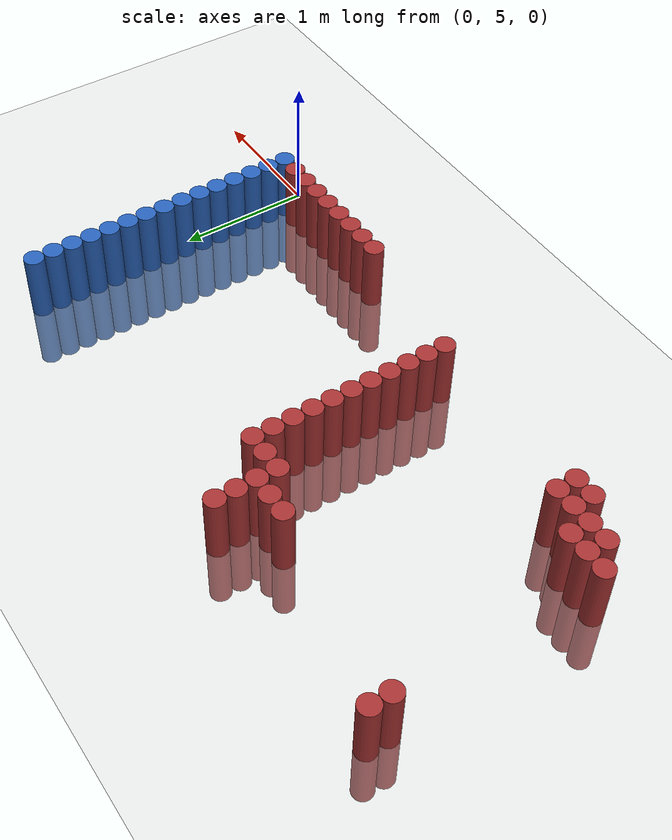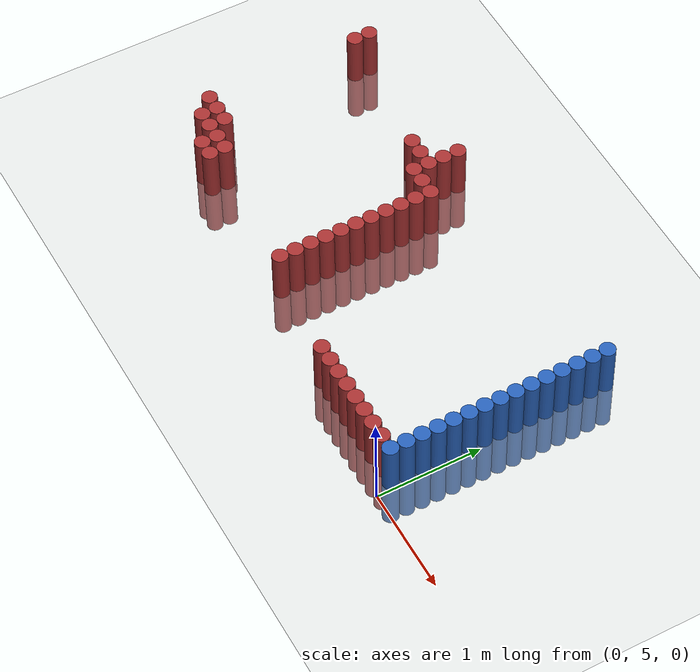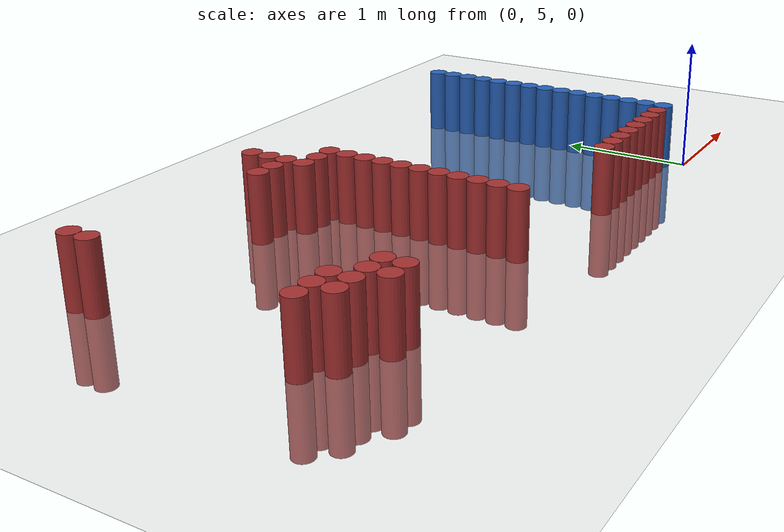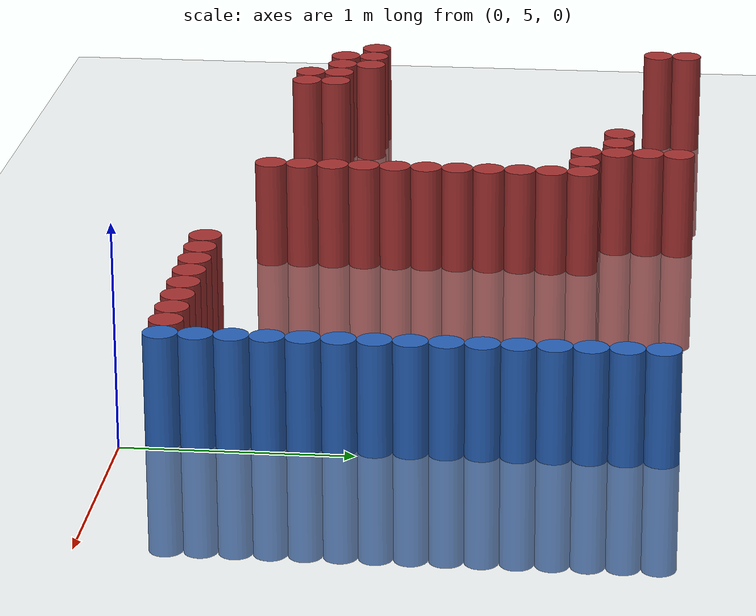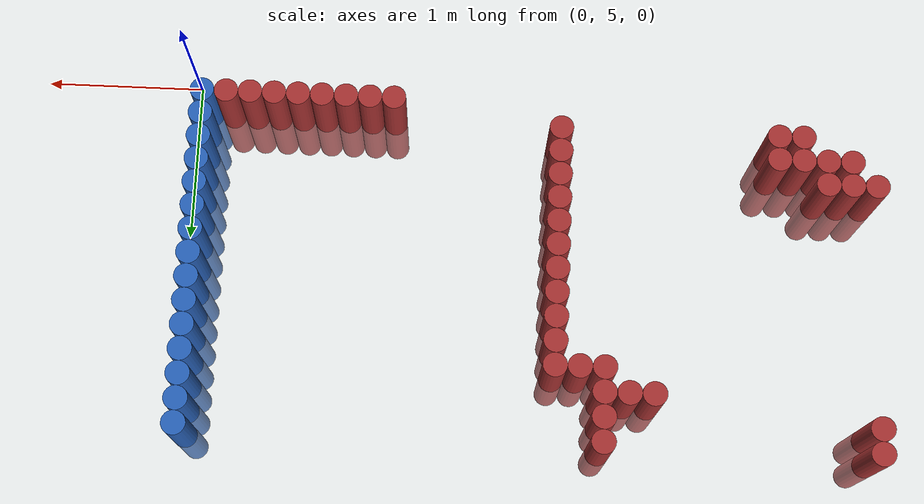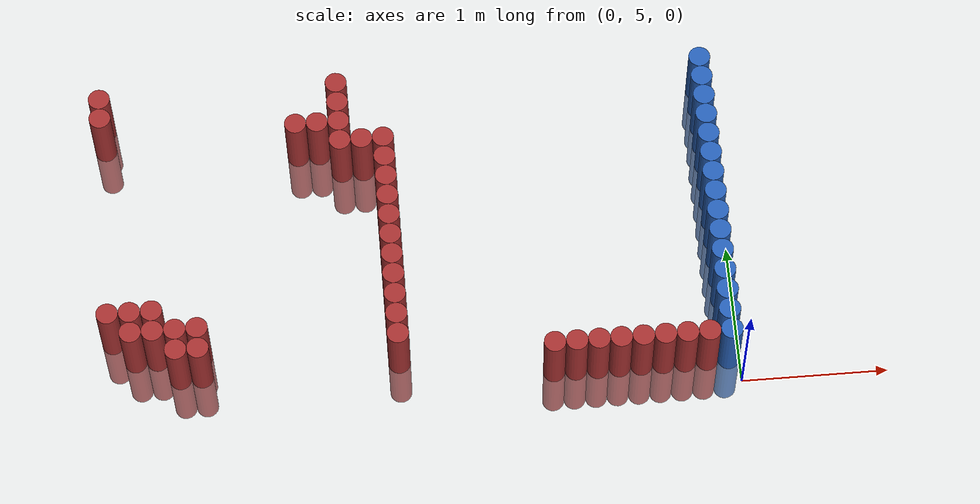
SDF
<sdf version="1.6">
 <world name="default">
  <model name="ground_plane">
   <static>1</static>
   <link name="link">
    <collision name="collision">
     <geometry><plane><normal>0 0 1</normal><size>100 100</size></plane></geometry>
     <surface><friction><ode><mu>100</mu><mu2>50</mu2></ode></friction></surface>
    </collision>
    <visual name="visual">
     <cast_shadows>0</cast_shadows>
     <geometry><plane><normal>0 0 1</normal><size>100 100</size></plane></geometry>
     <material>
      <script><uri>file://media/materials/scripts/gazebo.material</uri><name>Gazebo/Grey</name></script>
     </material>
    </visual>
   </link>
  </model>
  <model name="unit_cylinder_251">
   <static>1</static>
   <pose>-4.275000 5.625000 0.000000 0.000000 0.000000 0.000000</pose>
   <link name="link">
    <inertial>
     <mass>1</mass>
     <inertia><ixx>0.145833</ixx><ixy>0</ixy><ixz>0</ixz><iyy>0.145833</iyy><iyz>0</iyz><izz>0.125</izz></inertia>
    </inertial>
    <collision name="collision">
     <geometry><cylinder><radius>0.075000</radius><length>1</length></cylinder></geometry>
    </collision>
    <visual name="visual">
     <geometry><cylinder><radius>0.075000</radius><length>1</length></cylinder></geometry>
     <material>
      <ambient>0.648000 0.192000 0.192000 1</ambient>
      <diffuse>0.648000 0.192000 0.192000 1</diffuse>
     </material>
     <material>
      <script><name>Gazebo/Grey</name><uri>file://media/materials/scripts/gazebo.material</uri></script>
     </material>
    </visual>
   </link>
  </model>
  <model name="unit_cylinder_252">
   <static>1</static>
   <pose>-4.275000 7.125000 0.000000 0.000000 0.000000 0.000000</pose>
   <link name="link">
    <inertial>
     <mass>1</mass>
     <inertia><ixx>0.145833</ixx><ixy>0</ixy><ixz>0</ixz><iyy>0.145833</iyy><iyz>0</iyz><izz>0.125</izz></inertia>
    </inertial>
    <collision name="collision">
     <geometry><cylinder><radius>0.075000</radius><length>1</length></cylinder></geometry>
    </collision>
    <visual name="visual">
     <geometry><cylinder><radius>0.075000</radius><length>1</length></cylinder></geometry>
     <material>
      <ambient>0.648000 0.192000 0.192000 1</ambient>
      <diffuse>0.648000 0.192000 0.192000 1</diffuse>
     </material>
     <material>
      <script><name>Gazebo/Grey</name><uri>file://media/materials/scripts/gazebo.material</uri></script>
     </material>
    </visual>
   </link>
  </model>
  <model name="unit_cylinder_253">
   <static>1</static>
   <pose>-4.275000 7.275000 0.000000 0.000000 0.000000 0.000000</pose>
   <link name="link">
    <inertial>
     <mass>1</mass>
     <inertia><ixx>0.145833</ixx><ixy>0</ixy><ixz>0</ixz><iyy>0.145833</iyy><iyz>0</iyz><izz>0.125</izz></inertia>
    </inertial>
    <collision name="collision">
     <geometry><cylinder><radius>0.075000</radius><length>1</length></cylinder></geometry>
    </collision>
    <visual name="visual">
     <geometry><cylinder><radius>0.075000</radius><length>1</length></cylinder></geometry>
     <material>
      <ambient>0.648000 0.192000 0.192000 1</ambient>
      <diffuse>0.648000 0.192000 0.192000 1</diffuse>
     </material>
     <material>
      <script><name>Gazebo/Grey</name><uri>file://media/materials/scripts/gazebo.material</uri></script>
     </material>
    </visual>
   </link>
  </model>
  <model name="unit_cylinder_255">
   <static>1</static>
   <pose>-4.125000 5.475000 0.000000 0.000000 0.000000 0.000000</pose>
   <link name="link">
    <inertial>
     <mass>1</mass>
     <inertia><ixx>0.145833</ixx><ixy>0</ixy><ixz>0</ixz><iyy>0.145833</iyy><iyz>0</iyz><izz>0.125</izz></inertia>
    </inertial>
    <collision name="collision">
     <geometry><cylinder><radius>0.075000</radius><length>1</length></cylinder></geometry>
    </collision>
    <visual name="visual">
     <geometry><cylinder><radius>0.075000</radius><length>1</length></cylinder></geometry>
     <material>
      <ambient>0.648000 0.192000 0.192000 1</ambient>
      <diffuse>0.648000 0.192000 0.192000 1</diffuse>
     </material>
     <material>
      <script><name>Gazebo/Grey</name><uri>file://media/materials/scripts/gazebo.material</uri></script>
     </material>
    </visual>
   </link>
  </model>
  <model name="unit_cylinder_256">
   <static>1</static>
   <pose>-4.125000 5.625000 0.000000 0.000000 0.000000 0.000000</pose>
   <link name="link">
    <inertial>
     <mass>1</mass>
     <inertia><ixx>0.145833</ixx><ixy>0</ixy><ixz>0</ixz><iyy>0.145833</iyy><iyz>0</iyz><izz>0.125</izz></inertia>
    </inertial>
    <collision name="collision">
     <geometry><cylinder><radius>0.075000</radius><length>1</length></cylinder></geometry>
    </collision>
    <visual name="visual">
     <geometry><cylinder><radius>0.075000</radius><length>1</length></cylinder></geometry>
     <material>
      <ambient>0.648000 0.192000 0.192000 1</ambient>
      <diffuse>0.648000 0.192000 0.192000 1</diffuse>
     </material>
     <material>
      <script><name>Gazebo/Grey</name><uri>file://media/materials/scripts/gazebo.material</uri></script>
     </material>
    </visual>
   </link>
  </model>
  <model name="unit_cylinder_260">
   <static>1</static>
   <pose>-3.975000 5.475000 0.000000 0.000000 0.000000 0.000000</pose>
   <link name="link">
    <inertial>
     <mass>1</mass>
     <inertia><ixx>0.145833</ixx><ixy>0</ixy><ixz>0</ixz><iyy>0.145833</iyy><iyz>0</iyz><izz>0.125</izz></inertia>
    </inertial>
    <collision name="collision">
     <geometry><cylinder><radius>0.075000</radius><length>1</length></cylinder></geometry>
    </collision>
    <visual name="visual">
     <geometry><cylinder><radius>0.075000</radius><length>1</length></cylinder></geometry>
     <material>
      <ambient>0.648000 0.192000 0.192000 1</ambient>
      <diffuse>0.648000 0.192000 0.192000 1</diffuse>
     </material>
     <material>
      <script><name>Gazebo/Grey</name><uri>file://media/materials/scripts/gazebo.material</uri></script>
     </material>
    </visual>
   </link>
  </model>
  <model name="unit_cylinder_261">
   <static>1</static>
   <pose>-3.975000 5.625000 0.000000 0.000000 0.000000 0.000000</pose>
   <link name="link">
    <inertial>
     <mass>1</mass>
     <inertia><ixx>0.145833</ixx><ixy>0</ixy><ixz>0</ixz><iyy>0.145833</iyy><iyz>0</iyz><izz>0.125</izz></inertia>
    </inertial>
    <collision name="collision">
     <geometry><cylinder><radius>0.075000</radius><length>1</length></cylinder></geometry>
    </collision>
    <visual name="visual">
     <geometry><cylinder><radius>0.075000</radius><length>1</length></cylinder></geometry>
     <material>
      <ambient>0.648000 0.192000 0.192000 1</ambient>
      <diffuse>0.648000 0.192000 0.192000 1</diffuse>
     </material>
     <material>
      <script><name>Gazebo/Grey</name><uri>file://media/materials/scripts/gazebo.material</uri></script>
     </material>
    </visual>
   </link>
  </model>
  <model name="unit_cylinder_264">
   <static>1</static>
   <pose>-3.825000 5.325000 0.000000 0.000000 0.000000 0.000000</pose>
   <link name="link">
    <inertial>
     <mass>1</mass>
     <inertia><ixx>0.145833</ixx><ixy>0</ixy><ixz>0</ixz><iyy>0.145833</iyy><iyz>0</iyz><izz>0.125</izz></inertia>
    </inertial>
    <collision name="collision">
     <geometry><cylinder><radius>0.075000</radius><length>1</length></cylinder></geometry>
    </collision>
    <visual name="visual">
     <geometry><cylinder><radius>0.075000</radius><length>1</length></cylinder></geometry>
     <material>
      <ambient>0.648000 0.192000 0.192000 1</ambient>
      <diffuse>0.648000 0.192000 0.192000 1</diffuse>
     </material>
     <material>
      <script><name>Gazebo/Grey</name><uri>file://media/materials/scripts/gazebo.material</uri></script>
     </material>
    </visual>
   </link>
  </model>
  <model name="unit_cylinder_265">
   <static>1</static>
   <pose>-3.825000 5.475000 0.000000 0.000000 0.000000 0.000000</pose>
   <link name="link">
    <inertial>
     <mass>1</mass>
     <inertia><ixx>0.145833</ixx><ixy>0</ixy><ixz>0</ixz><iyy>0.145833</iyy><iyz>0</iyz><izz>0.125</izz></inertia>
    </inertial>
    <collision name="collision">
     <geometry><cylinder><radius>0.075000</radius><length>1</length></cylinder></geometry>
    </collision>
    <visual name="visual">
     <geometry><cylinder><radius>0.075000</radius><length>1</length></cylinder></geometry>
     <material>
      <ambient>0.648000 0.192000 0.192000 1</ambient>
      <diffuse>0.648000 0.192000 0.192000 1</diffuse>
     </material>
     <material>
      <script><name>Gazebo/Grey</name><uri>file://media/materials/scripts/gazebo.material</uri></script>
     </material>
    </visual>
   </link>
  </model>
  <model name="unit_cylinder_266">
   <static>1</static>
   <pose>-3.675000 5.325000 0.000000 0.000000 0.000000 0.000000</pose>
   <link name="link">
    <inertial>
     <mass>1</mass>
     <inertia><ixx>0.145833</ixx><ixy>0</ixy><ixz>0</ixz><iyy>0.145833</iyy><iyz>0</iyz><izz>0.125</izz></inertia>
    </inertial>
    <collision name="collision">
     <geometry><cylinder><radius>0.075000</radius><length>1</length></cylinder></geometry>
    </collision>
    <visual name="visual">
     <geometry><cylinder><radius>0.075000</radius><length>1</length></cylinder></geometry>
     <material>
      <ambient>0.648000 0.192000 0.192000 1</ambient>
      <diffuse>0.648000 0.192000 0.192000 1</diffuse>
     </material>
     <material>
      <script><name>Gazebo/Grey</name><uri>file://media/materials/scripts/gazebo.material</uri></script>
     </material>
    </visual>
   </link>
  </model>
  <model name="unit_cylinder_267">
   <static>1</static>
   <pose>-3.675000 5.475000 0.000000 0.000000 0.000000 0.000000</pose>
   <link name="link">
    <inertial>
     <mass>1</mass>
     <inertia><ixx>0.145833</ixx><ixy>0</ixy><ixz>0</ixz><iyy>0.145833</iyy><iyz>0</iyz><izz>0.125</izz></inertia>
    </inertial>
    <collision name="collision">
     <geometry><cylinder><radius>0.075000</radius><length>1</length></cylinder></geometry>
    </collision>
    <visual name="visual">
     <geometry><cylinder><radius>0.075000</radius><length>1</length></cylinder></geometry>
     <material>
      <ambient>0.648000 0.192000 0.192000 1</ambient>
      <diffuse>0.648000 0.192000 0.192000 1</diffuse>
     </material>
     <material>
      <script><name>Gazebo/Grey</name><uri>file://media/materials/scripts/gazebo.material</uri></script>
     </material>
    </visual>
   </link>
  </model>
  <model name="unit_cylinder_268">
   <static>1</static>
   <pose>-2.925000 6.975000 0.000000 0.000000 0.000000 0.000000</pose>
   <link name="link">
    <inertial>
     <mass>1</mass>
     <inertia><ixx>0.145833</ixx><ixy>0</ixy><ixz>0</ixz><iyy>0.145833</iyy><iyz>0</iyz><izz>0.125</izz></inertia>
    </inertial>
    <collision name="collision">
     <geometry><cylinder><radius>0.075000</radius><length>1</length></cylinder></geometry>
    </collision>
    <visual name="visual">
     <geometry><cylinder><radius>0.075000</radius><length>1</length></cylinder></geometry>
     <material>
      <ambient>0.648000 0.192000 0.192000 1</ambient>
      <diffuse>0.648000 0.192000 0.192000 1</diffuse>
     </material>
     <material>
      <script><name>Gazebo/Grey</name><uri>file://media/materials/scripts/gazebo.material</uri></script>
     </material>
    </visual>
   </link>
  </model>
  <model name="unit_cylinder_269">
   <static>1</static>
   <pose>-2.775000 6.975000 0.000000 0.000000 0.000000 0.000000</pose>
   <link name="link">
    <inertial>
     <mass>1</mass>
     <inertia><ixx>0.145833</ixx><ixy>0</ixy><ixz>0</ixz><iyy>0.145833</iyy><iyz>0</iyz><izz>0.125</izz></inertia>
    </inertial>
    <collision name="collision">
     <geometry><cylinder><radius>0.075000</radius><length>1</length></cylinder></geometry>
    </collision>
    <visual name="visual">
     <geometry><cylinder><radius>0.075000</radius><length>1</length></cylinder></geometry>
     <material>
      <ambient>0.648000 0.192000 0.192000 1</ambient>
      <diffuse>0.648000 0.192000 0.192000 1</diffuse>
     </material>
     <material>
      <script><name>Gazebo/Grey</name><uri>file://media/materials/scripts/gazebo.material</uri></script>
     </material>
    </visual>
   </link>
  </model>
  <model name="unit_cylinder_270">
   <static>1</static>
   <pose>-2.625000 6.825000 0.000000 0.000000 0.000000 0.000000</pose>
   <link name="link">
    <inertial>
     <mass>1</mass>
     <inertia><ixx>0.145833</ixx><ixy>0</ixy><ixz>0</ixz><iyy>0.145833</iyy><iyz>0</iyz><izz>0.125</izz></inertia>
    </inertial>
    <collision name="collision">
     <geometry><cylinder><radius>0.075000</radius><length>1</length></cylinder></geometry>
    </collision>
    <visual name="visual">
     <geometry><cylinder><radius>0.075000</radius><length>1</length></cylinder></geometry>
     <material>
      <ambient>0.648000 0.192000 0.192000 1</ambient>
      <diffuse>0.648000 0.192000 0.192000 1</diffuse>
     </material>
     <material>
      <script><name>Gazebo/Grey</name><uri>file://media/materials/scripts/gazebo.material</uri></script>
     </material>
    </visual>
   </link>
  </model>
  <model name="unit_cylinder_271">
   <static>1</static>
   <pose>-2.625000 6.975000 0.000000 0.000000 0.000000 0.000000</pose>
   <link name="link">
    <inertial>
     <mass>1</mass>
     <inertia><ixx>0.145833</ixx><ixy>0</ixy><ixz>0</ixz><iyy>0.145833</iyy><iyz>0</iyz><izz>0.125</izz></inertia>
    </inertial>
    <collision name="collision">
     <geometry><cylinder><radius>0.075000</radius><length>1</length></cylinder></geometry>
    </collision>
    <visual name="visual">
     <geometry><cylinder><radius>0.075000</radius><length>1</length></cylinder></geometry>
     <material>
      <ambient>0.648000 0.192000 0.192000 1</ambient>
      <diffuse>0.648000 0.192000 0.192000 1</diffuse>
     </material>
     <material>
      <script><name>Gazebo/Grey</name><uri>file://media/materials/scripts/gazebo.material</uri></script>
     </material>
    </visual>
   </link>
  </model>
  <model name="unit_cylinder_272">
   <static>1</static>
   <pose>-2.625000 7.125000 0.000000 0.000000 0.000000 0.000000</pose>
   <link name="link">
    <inertial>
     <mass>1</mass>
     <inertia><ixx>0.145833</ixx><ixy>0</ixy><ixz>0</ixz><iyy>0.145833</iyy><iyz>0</iyz><izz>0.125</izz></inertia>
    </inertial>
    <collision name="collision">
     <geometry><cylinder><radius>0.075000</radius><length>1</length></cylinder></geometry>
    </collision>
    <visual name="visual">
     <geometry><cylinder><radius>0.075000</radius><length>1</length></cylinder></geometry>
     <material>
      <ambient>0.648000 0.192000 0.192000 1</ambient>
      <diffuse>0.648000 0.192000 0.192000 1</diffuse>
     </material>
     <material>
      <script><name>Gazebo/Grey</name><uri>file://media/materials/scripts/gazebo.material</uri></script>
     </material>
    </visual>
   </link>
  </model>
  <model name="unit_cylinder_273">
   <static>1</static>
   <pose>-2.625000 7.275000 0.000000 0.000000 0.000000 0.000000</pose>
   <link name="link">
    <inertial>
     <mass>1</mass>
     <inertia><ixx>0.145833</ixx><ixy>0</ixy><ixz>0</ixz><iyy>0.145833</iyy><iyz>0</iyz><izz>0.125</izz></inertia>
    </inertial>
    <collision name="collision">
     <geometry><cylinder><radius>0.075000</radius><length>1</length></cylinder></geometry>
    </collision>
    <visual name="visual">
     <geometry><cylinder><radius>0.075000</radius><length>1</length></cylinder></geometry>
     <material>
      <ambient>0.648000 0.192000 0.192000 1</ambient>
      <diffuse>0.648000 0.192000 0.192000 1</diffuse>
     </material>
     <material>
      <script><name>Gazebo/Grey</name><uri>file://media/materials/scripts/gazebo.material</uri></script>
     </material>
    </visual>
   </link>
  </model>
  <model name="unit_cylinder_289">
   <static>1</static>
   <pose>-2.475000 6.825000 0.000000 0.000000 0.000000 0.000000</pose>
   <link name="link">
    <inertial>
     <mass>1</mass>
     <inertia><ixx>0.145833</ixx><ixy>0</ixy><ixz>0</ixz><iyy>0.145833</iyy><iyz>0</iyz><izz>0.125</izz></inertia>
    </inertial>
    <collision name="collision">
     <geometry><cylinder><radius>0.075000</radius><length>1</length></cylinder></geometry>
    </collision>
    <visual name="visual">
     <geometry><cylinder><radius>0.075000</radius><length>1</length></cylinder></geometry>
     <material>
      <ambient>0.648000 0.192000 0.192000 1</ambient>
      <diffuse>0.648000 0.192000 0.192000 1</diffuse>
     </material>
     <material>
      <script><name>Gazebo/Grey</name><uri>file://media/materials/scripts/gazebo.material</uri></script>
     </material>
    </visual>
   </link>
  </model>
  <model name="unit_cylinder_292">
   <static>1</static>
   <pose>-2.325000 5.325000 0.000000 0.000000 0.000000 0.000000</pose>
   <link name="link">
    <inertial>
     <mass>1</mass>
     <inertia><ixx>0.145833</ixx><ixy>0</ixy><ixz>0</ixz><iyy>0.145833</iyy><iyz>0</iyz><izz>0.125</izz></inertia>
    </inertial>
    <collision name="collision">
     <geometry><cylinder><radius>0.075000</radius><length>1</length></cylinder></geometry>
    </collision>
    <visual name="visual">
     <geometry><cylinder><radius>0.075000</radius><length>1</length></cylinder></geometry>
     <material>
      <ambient>0.648000 0.192000 0.192000 1</ambient>
      <diffuse>0.648000 0.192000 0.192000 1</diffuse>
     </material>
     <material>
      <script><name>Gazebo/Grey</name><uri>file://media/materials/scripts/gazebo.material</uri></script>
     </material>
    </visual>
   </link>
  </model>
  <model name="unit_cylinder_293">
   <static>1</static>
   <pose>-2.325000 5.475000 0.000000 0.000000 0.000000 0.000000</pose>
   <link name="link">
    <inertial>
     <mass>1</mass>
     <inertia><ixx>0.145833</ixx><ixy>0</ixy><ixz>0</ixz><iyy>0.145833</iyy><iyz>0</iyz><izz>0.125</izz></inertia>
    </inertial>
    <collision name="collision">
     <geometry><cylinder><radius>0.075000</radius><length>1</length></cylinder></geometry>
    </collision>
    <visual name="visual">
     <geometry><cylinder><radius>0.075000</radius><length>1</length></cylinder></geometry>
     <material>
      <ambient>0.648000 0.192000 0.192000 1</ambient>
      <diffuse>0.648000 0.192000 0.192000 1</diffuse>
     </material>
     <material>
      <script><name>Gazebo/Grey</name><uri>file://media/materials/scripts/gazebo.material</uri></script>
     </material>
    </visual>
   </link>
  </model>
  <model name="unit_cylinder_294">
   <static>1</static>
   <pose>-2.325000 5.625000 0.000000 0.000000 0.000000 0.000000</pose>
   <link name="link">
    <inertial>
     <mass>1</mass>
     <inertia><ixx>0.145833</ixx><ixy>0</ixy><ixz>0</ixz><iyy>0.145833</iyy><iyz>0</iyz><izz>0.125</izz></inertia>
    </inertial>
    <collision name="collision">
     <geometry><cylinder><radius>0.075000</radius><length>1</length></cylinder></geometry>
    </collision>
    <visual name="visual">
     <geometry><cylinder><radius>0.075000</radius><length>1</length></cylinder></geometry>
     <material>
      <ambient>0.648000 0.192000 0.192000 1</ambient>
      <diffuse>0.648000 0.192000 0.192000 1</diffuse>
     </material>
     <material>
      <script><name>Gazebo/Grey</name><uri>file://media/materials/scripts/gazebo.material</uri></script>
     </material>
    </visual>
   </link>
  </model>
  <model name="unit_cylinder_295">
   <static>1</static>
   <pose>-2.325000 5.775000 0.000000 0.000000 0.000000 0.000000</pose>
   <link name="link">
    <inertial>
     <mass>1</mass>
     <inertia><ixx>0.145833</ixx><ixy>0</ixy><ixz>0</ixz><iyy>0.145833</iyy><iyz>0</iyz><izz>0.125</izz></inertia>
    </inertial>
    <collision name="collision">
     <geometry><cylinder><radius>0.075000</radius><length>1</length></cylinder></geometry>
    </collision>
    <visual name="visual">
     <geometry><cylinder><radius>0.075000</radius><length>1</length></cylinder></geometry>
     <material>
      <ambient>0.648000 0.192000 0.192000 1</ambient>
      <diffuse>0.648000 0.192000 0.192000 1</diffuse>
     </material>
     <material>
      <script><name>Gazebo/Grey</name><uri>file://media/materials/scripts/gazebo.material</uri></script>
     </material>
    </visual>
   </link>
  </model>
  <model name="unit_cylinder_296">
   <static>1</static>
   <pose>-2.325000 5.925000 0.000000 0.000000 0.000000 0.000000</pose>
   <link name="link">
    <inertial>
     <mass>1</mass>
     <inertia><ixx>0.145833</ixx><ixy>0</ixy><ixz>0</ixz><iyy>0.145833</iyy><iyz>0</iyz><izz>0.125</izz></inertia>
    </inertial>
    <collision name="collision">
     <geometry><cylinder><radius>0.075000</radius><length>1</length></cylinder></geometry>
    </collision>
    <visual name="visual">
     <geometry><cylinder><radius>0.075000</radius><length>1</length></cylinder></geometry>
     <material>
      <ambient>0.648000 0.192000 0.192000 1</ambient>
      <diffuse>0.648000 0.192000 0.192000 1</diffuse>
     </material>
     <material>
      <script><name>Gazebo/Grey</name><uri>file://media/materials/scripts/gazebo.material</uri></script>
     </material>
    </visual>
   </link>
  </model>
  <model name="unit_cylinder_297">
   <static>1</static>
   <pose>-2.325000 6.075000 0.000000 0.000000 0.000000 0.000000</pose>
   <link name="link">
    <inertial>
     <mass>1</mass>
     <inertia><ixx>0.145833</ixx><ixy>0</ixy><ixz>0</ixz><iyy>0.145833</iyy><iyz>0</iyz><izz>0.125</izz></inertia>
    </inertial>
    <collision name="collision">
     <geometry><cylinder><radius>0.075000</radius><length>1</length></cylinder></geometry>
    </collision>
    <visual name="visual">
     <geometry><cylinder><radius>0.075000</radius><length>1</length></cylinder></geometry>
     <material>
      <ambient>0.648000 0.192000 0.192000 1</ambient>
      <diffuse>0.648000 0.192000 0.192000 1</diffuse>
     </material>
     <material>
      <script><name>Gazebo/Grey</name><uri>file://media/materials/scripts/gazebo.material</uri></script>
     </material>
    </visual>
   </link>
  </model>
  <model name="unit_cylinder_298">
   <static>1</static>
   <pose>-2.325000 6.225000 0.000000 0.000000 0.000000 0.000000</pose>
   <link name="link">
    <inertial>
     <mass>1</mass>
     <inertia><ixx>0.145833</ixx><ixy>0</ixy><ixz>0</ixz><iyy>0.145833</iyy><iyz>0</iyz><izz>0.125</izz></inertia>
    </inertial>
    <collision name="collision">
     <geometry><cylinder><radius>0.075000</radius><length>1</length></cylinder></geometry>
    </collision>
    <visual name="visual">
     <geometry><cylinder><radius>0.075000</radius><length>1</length></cylinder></geometry>
     <material>
      <ambient>0.648000 0.192000 0.192000 1</ambient>
      <diffuse>0.648000 0.192000 0.192000 1</diffuse>
     </material>
     <material>
      <script><name>Gazebo/Grey</name><uri>file://media/materials/scripts/gazebo.material</uri></script>
     </material>
    </visual>
   </link>
  </model>
  <model name="unit_cylinder_299">
   <static>1</static>
   <pose>-2.325000 6.375000 0.000000 0.000000 0.000000 0.000000</pose>
   <link name="link">
    <inertial>
     <mass>1</mass>
     <inertia><ixx>0.145833</ixx><ixy>0</ixy><ixz>0</ixz><iyy>0.145833</iyy><iyz>0</iyz><izz>0.125</izz></inertia>
    </inertial>
    <collision name="collision">
     <geometry><cylinder><radius>0.075000</radius><length>1</length></cylinder></geometry>
    </collision>
    <visual name="visual">
     <geometry><cylinder><radius>0.075000</radius><length>1</length></cylinder></geometry>
     <material>
      <ambient>0.648000 0.192000 0.192000 1</ambient>
      <diffuse>0.648000 0.192000 0.192000 1</diffuse>
     </material>
     <material>
      <script><name>Gazebo/Grey</name><uri>file://media/materials/scripts/gazebo.material</uri></script>
     </material>
    </visual>
   </link>
  </model>
  <model name="unit_cylinder_300">
   <static>1</static>
   <pose>-2.325000 6.525000 0.000000 0.000000 0.000000 0.000000</pose>
   <link name="link">
    <inertial>
     <mass>1</mass>
     <inertia><ixx>0.145833</ixx><ixy>0</ixy><ixz>0</ixz><iyy>0.145833</iyy><iyz>0</iyz><izz>0.125</izz></inertia>
    </inertial>
    <collision name="collision">
     <geometry><cylinder><radius>0.075000</radius><length>1</length></cylinder></geometry>
    </collision>
    <visual name="visual">
     <geometry><cylinder><radius>0.075000</radius><length>1</length></cylinder></geometry>
     <material>
      <ambient>0.648000 0.192000 0.192000 1</ambient>
      <diffuse>0.648000 0.192000 0.192000 1</diffuse>
     </material>
     <material>
      <script><name>Gazebo/Grey</name><uri>file://media/materials/scripts/gazebo.material</uri></script>
     </material>
    </visual>
   </link>
  </model>
  <model name="unit_cylinder_301">
   <static>1</static>
   <pose>-2.325000 6.675000 0.000000 0.000000 0.000000 0.000000</pose>
   <link name="link">
    <inertial>
     <mass>1</mass>
     <inertia><ixx>0.145833</ixx><ixy>0</ixy><ixz>0</ixz><iyy>0.145833</iyy><iyz>0</iyz><izz>0.125</izz></inertia>
    </inertial>
    <collision name="collision">
     <geometry><cylinder><radius>0.075000</radius><length>1</length></cylinder></geometry>
    </collision>
    <visual name="visual">
     <geometry><cylinder><radius>0.075000</radius><length>1</length></cylinder></geometry>
     <material>
      <ambient>0.648000 0.192000 0.192000 1</ambient>
      <diffuse>0.648000 0.192000 0.192000 1</diffuse>
     </material>
     <material>
      <script><name>Gazebo/Grey</name><uri>file://media/materials/scripts/gazebo.material</uri></script>
     </material>
    </visual>
   </link>
  </model>
  <model name="unit_cylinder_302">
   <static>1</static>
   <pose>-2.325000 6.825000 0.000000 0.000000 0.000000 0.000000</pose>
   <link name="link">
    <inertial>
     <mass>1</mass>
     <inertia><ixx>0.145833</ixx><ixy>0</ixy><ixz>0</ixz><iyy>0.145833</iyy><iyz>0</iyz><izz>0.125</izz></inertia>
    </inertial>
    <collision name="collision">
     <geometry><cylinder><radius>0.075000</radius><length>1</length></cylinder></geometry>
    </collision>
    <visual name="visual">
     <geometry><cylinder><radius>0.075000</radius><length>1</length></cylinder></geometry>
     <material>
      <ambient>0.648000 0.192000 0.192000 1</ambient>
      <diffuse>0.648000 0.192000 0.192000 1</diffuse>
     </material>
     <material>
      <script><name>Gazebo/Grey</name><uri>file://media/materials/scripts/gazebo.material</uri></script>
     </material>
    </visual>
   </link>
  </model>
  <model name="unit_cylinder_316">
   <static>1</static>
   <pose>-1.275000 5.175000 0.000000 0.000000 0.000000 0.000000</pose>
   <link name="link">
    <inertial>
     <mass>1</mass>
     <inertia><ixx>0.145833</ixx><ixy>0</ixy><ixz>0</ixz><iyy>0.145833</iyy><iyz>0</iyz><izz>0.125</izz></inertia>
    </inertial>
    <collision name="collision">
     <geometry><cylinder><radius>0.075000</radius><length>1</length></cylinder></geometry>
    </collision>
    <visual name="visual">
     <geometry><cylinder><radius>0.075000</radius><length>1</length></cylinder></geometry>
     <material>
      <ambient>0.648000 0.192000 0.192000 1</ambient>
      <diffuse>0.648000 0.192000 0.192000 1</diffuse>
     </material>
     <material>
      <script><name>Gazebo/Grey</name><uri>file://media/materials/scripts/gazebo.material</uri></script>
     </material>
    </visual>
   </link>
  </model>
  <model name="unit_cylinder_318">
   <static>1</static>
   <pose>-1.125000 5.175000 0.000000 0.000000 0.000000 0.000000</pose>
   <link name="link">
    <inertial>
     <mass>1</mass>
     <inertia><ixx>0.145833</ixx><ixy>0</ixy><ixz>0</ixz><iyy>0.145833</iyy><iyz>0</iyz><izz>0.125</izz></inertia>
    </inertial>
    <collision name="collision">
     <geometry><cylinder><radius>0.075000</radius><length>1</length></cylinder></geometry>
    </collision>
    <visual name="visual">
     <geometry><cylinder><radius>0.075000</radius><length>1</length></cylinder></geometry>
     <material>
      <ambient>0.648000 0.192000 0.192000 1</ambient>
      <diffuse>0.648000 0.192000 0.192000 1</diffuse>
     </material>
     <material>
      <script><name>Gazebo/Grey</name><uri>file://media/materials/scripts/gazebo.material</uri></script>
     </material>
    </visual>
   </link>
  </model>
  <model name="unit_cylinder_320">
   <static>1</static>
   <pose>-0.975000 5.175000 0.000000 0.000000 0.000000 0.000000</pose>
   <link name="link">
    <inertial>
     <mass>1</mass>
     <inertia><ixx>0.145833</ixx><ixy>0</ixy><ixz>0</ixz><iyy>0.145833</iyy><iyz>0</iyz><izz>0.125</izz></inertia>
    </inertial>
    <collision name="collision">
     <geometry><cylinder><radius>0.075000</radius><length>1</length></cylinder></geometry>
    </collision>
    <visual name="visual">
     <geometry><cylinder><radius>0.075000</radius><length>1</length></cylinder></geometry>
     <material>
      <ambient>0.648000 0.192000 0.192000 1</ambient>
      <diffuse>0.648000 0.192000 0.192000 1</diffuse>
     </material>
     <material>
      <script><name>Gazebo/Grey</name><uri>file://media/materials/scripts/gazebo.material</uri></script>
     </material>
    </visual>
   </link>
  </model>
  <model name="unit_cylinder_322">
   <static>1</static>
   <pose>-0.825000 5.175000 0.000000 0.000000 0.000000 0.000000</pose>
   <link name="link">
    <inertial>
     <mass>1</mass>
     <inertia><ixx>0.145833</ixx><ixy>0</ixy><ixz>0</ixz><iyy>0.145833</iyy><iyz>0</iyz><izz>0.125</izz></inertia>
    </inertial>
    <collision name="collision">
     <geometry><cylinder><radius>0.075000</radius><length>1</length></cylinder></geometry>
    </collision>
    <visual name="visual">
     <geometry><cylinder><radius>0.075000</radius><length>1</length></cylinder></geometry>
     <material>
      <ambient>0.648000 0.192000 0.192000 1</ambient>
      <diffuse>0.648000 0.192000 0.192000 1</diffuse>
     </material>
     <material>
      <script><name>Gazebo/Grey</name><uri>file://media/materials/scripts/gazebo.material</uri></script>
     </material>
    </visual>
   </link>
  </model>
  <model name="unit_cylinder_324">
   <static>1</static>
   <pose>-0.675000 5.175000 0.000000 0.000000 0.000000 0.000000</pose>
   <link name="link">
    <inertial>
     <mass>1</mass>
     <inertia><ixx>0.145833</ixx><ixy>0</ixy><ixz>0</ixz><iyy>0.145833</iyy><iyz>0</iyz><izz>0.125</izz></inertia>
    </inertial>
    <collision name="collision">
     <geometry><cylinder><radius>0.075000</radius><length>1</length></cylinder></geometry>
    </collision>
    <visual name="visual">
     <geometry><cylinder><radius>0.075000</radius><length>1</length></cylinder></geometry>
     <material>
      <ambient>0.648000 0.192000 0.192000 1</ambient>
      <diffuse>0.648000 0.192000 0.192000 1</diffuse>
     </material>
     <material>
      <script><name>Gazebo/Grey</name><uri>file://media/materials/scripts/gazebo.material</uri></script>
     </material>
    </visual>
   </link>
  </model>
  <model name="unit_cylinder_326">
   <static>1</static>
   <pose>-0.525000 5.175000 0.000000 0.000000 0.000000 0.000000</pose>
   <link name="link">
    <inertial>
     <mass>1</mass>
     <inertia><ixx>0.145833</ixx><ixy>0</ixy><ixz>0</ixz><iyy>0.145833</iyy><iyz>0</iyz><izz>0.125</izz></inertia>
    </inertial>
    <collision name="collision">
     <geometry><cylinder><radius>0.075000</radius><length>1</length></cylinder></geometry>
    </collision>
    <visual name="visual">
     <geometry><cylinder><radius>0.075000</radius><length>1</length></cylinder></geometry>
     <material>
      <ambient>0.648000 0.192000 0.192000 1</ambient>
      <diffuse>0.648000 0.192000 0.192000 1</diffuse>
     </material>
     <material>
      <script><name>Gazebo/Grey</name><uri>file://media/materials/scripts/gazebo.material</uri></script>
     </material>
    </visual>
   </link>
  </model>
  <model name="unit_cylinder_328">
   <static>1</static>
   <pose>-0.375000 5.175000 0.000000 0.000000 0.000000 0.000000</pose>
   <link name="link">
    <inertial>
     <mass>1</mass>
     <inertia><ixx>0.145833</ixx><ixy>0</ixy><ixz>0</ixz><iyy>0.145833</iyy><iyz>0</iyz><izz>0.125</izz></inertia>
    </inertial>
    <collision name="collision">
     <geometry><cylinder><radius>0.075000</radius><length>1</length></cylinder></geometry>
    </collision>
    <visual name="visual">
     <geometry><cylinder><radius>0.075000</radius><length>1</length></cylinder></geometry>
     <material>
      <ambient>0.648000 0.192000 0.192000 1</ambient>
      <diffuse>0.648000 0.192000 0.192000 1</diffuse>
     </material>
     <material>
      <script><name>Gazebo/Grey</name><uri>file://media/materials/scripts/gazebo.material</uri></script>
     </material>
    </visual>
   </link>
  </model>
  <model name="unit_cylinder_330">
   <static>1</static>
   <pose>-0.225000 5.175000 0.000000 0.000000 0.000000 0.000000</pose>
   <link name="link">
    <inertial>
     <mass>1</mass>
     <inertia><ixx>0.145833</ixx><ixy>0</ixy><ixz>0</ixz><iyy>0.145833</iyy><iyz>0</iyz><izz>0.125</izz></inertia>
    </inertial>
    <collision name="collision">
     <geometry><cylinder><radius>0.075000</radius><length>1</length></cylinder></geometry>
    </collision>
    <visual name="visual">
     <geometry><cylinder><radius>0.075000</radius><length>1</length></cylinder></geometry>
     <material>
      <ambient>0.648000 0.192000 0.192000 1</ambient>
      <diffuse>0.648000 0.192000 0.192000 1</diffuse>
     </material>
     <material>
      <script><name>Gazebo/Grey</name><uri>file://media/materials/scripts/gazebo.material</uri></script>
     </material>
    </visual>
   </link>
  </model>
  <model name="unit_cylinder_332">
   <static>1</static>
   <pose>-0.075000 5.175000 0.000000 0.000000 0.000000 0.000000</pose>
   <link name="link">
    <inertial>
     <mass>1</mass>
     <inertia><ixx>0.145833</ixx><ixy>0</ixy><ixz>0</ixz><iyy>0.145833</iyy><iyz>0</iyz><izz>0.125</izz></inertia>
    </inertial>
    <collision name="collision">
     <geometry><cylinder><radius>0.075000</radius><length>1</length></cylinder></geometry>
    </collision>
    <visual name="visual">
     <geometry><cylinder><radius>0.075000</radius><length>1</length></cylinder></geometry>
     <material>
      <ambient>0.152000 0.379000 0.720000 1</ambient>
      <diffuse>0.152000 0.379000 0.720000 1</diffuse>
     </material>
     <material>
      <script><name>Gazebo/Grey</name><uri>file://media/materials/scripts/gazebo.material</uri></script>
     </material>
    </visual>
   </link>
  </model>
  <model name="unit_cylinder_333">
   <static>1</static>
   <pose>-0.075000 5.325000 0.000000 0.000000 0.000000 0.000000</pose>
   <link name="link">
    <inertial>
     <mass>1</mass>
     <inertia><ixx>0.145833</ixx><ixy>0</ixy><ixz>0</ixz><iyy>0.145833</iyy><iyz>0</iyz><izz>0.125</izz></inertia>
    </inertial>
    <collision name="collision">
     <geometry><cylinder><radius>0.075000</radius><length>1</length></cylinder></geometry>
    </collision>
    <visual name="visual">
     <geometry><cylinder><radius>0.075000</radius><length>1</length></cylinder></geometry>
     <material>
      <ambient>0.152000 0.379000 0.720000 1</ambient>
      <diffuse>0.152000 0.379000 0.720000 1</diffuse>
     </material>
     <material>
      <script><name>Gazebo/Grey</name><uri>file://media/materials/scripts/gazebo.material</uri></script>
     </material>
    </visual>
   </link>
  </model>
  <model name="unit_cylinder_334">
   <static>1</static>
   <pose>-0.075000 5.475000 0.000000 0.000000 0.000000 0.000000</pose>
   <link name="link">
    <inertial>
     <mass>1</mass>
     <inertia><ixx>0.145833</ixx><ixy>0</ixy><ixz>0</ixz><iyy>0.145833</iyy><iyz>0</iyz><izz>0.125</izz></inertia>
    </inertial>
    <collision name="collision">
     <geometry><cylinder><radius>0.075000</radius><length>1</length></cylinder></geometry>
    </collision>
    <visual name="visual">
     <geometry><cylinder><radius>0.075000</radius><length>1</length></cylinder></geometry>
     <material>
      <ambient>0.152000 0.379000 0.720000 1</ambient>
      <diffuse>0.152000 0.379000 0.720000 1</diffuse>
     </material>
     <material>
      <script><name>Gazebo/Grey</name><uri>file://media/materials/scripts/gazebo.material</uri></script>
     </material>
    </visual>
   </link>
  </model>
  <model name="unit_cylinder_335">
   <static>1</static>
   <pose>-0.075000 5.625000 0.000000 0.000000 0.000000 0.000000</pose>
   <link name="link">
    <inertial>
     <mass>1</mass>
     <inertia><ixx>0.145833</ixx><ixy>0</ixy><ixz>0</ixz><iyy>0.145833</iyy><iyz>0</iyz><izz>0.125</izz></inertia>
    </inertial>
    <collision name="collision">
     <geometry><cylinder><radius>0.075000</radius><length>1</length></cylinder></geometry>
    </collision>
    <visual name="visual">
     <geometry><cylinder><radius>0.075000</radius><length>1</length></cylinder></geometry>
     <material>
      <ambient>0.152000 0.379000 0.720000 1</ambient>
      <diffuse>0.152000 0.379000 0.720000 1</diffuse>
     </material>
     <material>
      <script><name>Gazebo/Grey</name><uri>file://media/materials/scripts/gazebo.material</uri></script>
     </material>
    </visual>
   </link>
  </model>
  <model name="unit_cylinder_336">
   <static>1</static>
   <pose>-0.075000 5.775000 0.000000 0.000000 0.000000 0.000000</pose>
   <link name="link">
    <inertial>
     <mass>1</mass>
     <inertia><ixx>0.145833</ixx><ixy>0</ixy><ixz>0</ixz><iyy>0.145833</iyy><iyz>0</iyz><izz>0.125</izz></inertia>
    </inertial>
    <collision name="collision">
     <geometry><cylinder><radius>0.075000</radius><length>1</length></cylinder></geometry>
    </collision>
    <visual name="visual">
     <geometry><cylinder><radius>0.075000</radius><length>1</length></cylinder></geometry>
     <material>
      <ambient>0.152000 0.379000 0.720000 1</ambient>
      <diffuse>0.152000 0.379000 0.720000 1</diffuse>
     </material>
     <material>
      <script><name>Gazebo/Grey</name><uri>file://media/materials/scripts/gazebo.material</uri></script>
     </material>
    </visual>
   </link>
  </model>
  <model name="unit_cylinder_337">
   <static>1</static>
   <pose>-0.075000 5.925000 0.000000 0.000000 0.000000 0.000000</pose>
   <link name="link">
    <inertial>
     <mass>1</mass>
     <inertia><ixx>0.145833</ixx><ixy>0</ixy><ixz>0</ixz><iyy>0.145833</iyy><iyz>0</iyz><izz>0.125</izz></inertia>
    </inertial>
    <collision name="collision">
     <geometry><cylinder><radius>0.075000</radius><length>1</length></cylinder></geometry>
    </collision>
    <visual name="visual">
     <geometry><cylinder><radius>0.075000</radius><length>1</length></cylinder></geometry>
     <material>
      <ambient>0.152000 0.379000 0.720000 1</ambient>
      <diffuse>0.152000 0.379000 0.720000 1</diffuse>
     </material>
     <material>
      <script><name>Gazebo/Grey</name><uri>file://media/materials/scripts/gazebo.material</uri></script>
     </material>
    </visual>
   </link>
  </model>
  <model name="unit_cylinder_338">
   <static>1</static>
   <pose>-0.075000 6.075000 0.000000 0.000000 0.000000 0.000000</pose>
   <link name="link">
    <inertial>
     <mass>1</mass>
     <inertia><ixx>0.145833</ixx><ixy>0</ixy><ixz>0</ixz><iyy>0.145833</iyy><iyz>0</iyz><izz>0.125</izz></inertia>
    </inertial>
    <collision name="collision">
     <geometry><cylinder><radius>0.075000</radius><length>1</length></cylinder></geometry>
    </collision>
    <visual name="visual">
     <geometry><cylinder><radius>0.075000</radius><length>1</length></cylinder></geometry>
     <material>
      <ambient>0.152000 0.379000 0.720000 1</ambient>
      <diffuse>0.152000 0.379000 0.720000 1</diffuse>
     </material>
     <material>
      <script><name>Gazebo/Grey</name><uri>file://media/materials/scripts/gazebo.material</uri></script>
     </material>
    </visual>
   </link>
  </model>
  <model name="unit_cylinder_339">
   <static>1</static>
   <pose>-0.075000 6.225000 0.000000 0.000000 0.000000 0.000000</pose>
   <link name="link">
    <inertial>
     <mass>1</mass>
     <inertia><ixx>0.145833</ixx><ixy>0</ixy><ixz>0</ixz><iyy>0.145833</iyy><iyz>0</iyz><izz>0.125</izz></inertia>
    </inertial>
    <collision name="collision">
     <geometry><cylinder><radius>0.075000</radius><length>1</length></cylinder></geometry>
    </collision>
    <visual name="visual">
     <geometry><cylinder><radius>0.075000</radius><length>1</length></cylinder></geometry>
     <material>
      <ambient>0.152000 0.379000 0.720000 1</ambient>
      <diffuse>0.152000 0.379000 0.720000 1</diffuse>
     </material>
     <material>
      <script><name>Gazebo/Grey</name><uri>file://media/materials/scripts/gazebo.material</uri></script>
     </material>
    </visual>
   </link>
  </model>
  <model name="unit_cylinder_340">
   <static>1</static>
   <pose>-0.075000 6.375000 0.000000 0.000000 0.000000 0.000000</pose>
   <link name="link">
    <inertial>
     <mass>1</mass>
     <inertia><ixx>0.145833</ixx><ixy>0</ixy><ixz>0</ixz><iyy>0.145833</iyy><iyz>0</iyz><izz>0.125</izz></inertia>
    </inertial>
    <collision name="collision">
     <geometry><cylinder><radius>0.075000</radius><length>1</length></cylinder></geometry>
    </collision>
    <visual name="visual">
     <geometry><cylinder><radius>0.075000</radius><length>1</length></cylinder></geometry>
     <material>
      <ambient>0.152000 0.379000 0.720000 1</ambient>
      <diffuse>0.152000 0.379000 0.720000 1</diffuse>
     </material>
     <material>
      <script><name>Gazebo/Grey</name><uri>file://media/materials/scripts/gazebo.material</uri></script>
     </material>
    </visual>
   </link>
  </model>
  <model name="unit_cylinder_341">
   <static>1</static>
   <pose>-0.075000 6.525000 0.000000 0.000000 0.000000 0.000000</pose>
   <link name="link">
    <inertial>
     <mass>1</mass>
     <inertia><ixx>0.145833</ixx><ixy>0</ixy><ixz>0</ixz><iyy>0.145833</iyy><iyz>0</iyz><izz>0.125</izz></inertia>
    </inertial>
    <collision name="collision">
     <geometry><cylinder><radius>0.075000</radius><length>1</length></cylinder></geometry>
    </collision>
    <visual name="visual">
     <geometry><cylinder><radius>0.075000</radius><length>1</length></cylinder></geometry>
     <material>
      <ambient>0.152000 0.379000 0.720000 1</ambient>
      <diffuse>0.152000 0.379000 0.720000 1</diffuse>
     </material>
     <material>
      <script><name>Gazebo/Grey</name><uri>file://media/materials/scripts/gazebo.material</uri></script>
     </material>
    </visual>
   </link>
  </model>
  <model name="unit_cylinder_342">
   <static>1</static>
   <pose>-0.075000 6.675000 0.000000 0.000000 0.000000 0.000000</pose>
   <link name="link">
    <inertial>
     <mass>1</mass>
     <inertia><ixx>0.145833</ixx><ixy>0</ixy><ixz>0</ixz><iyy>0.145833</iyy><iyz>0</iyz><izz>0.125</izz></inertia>
    </inertial>
    <collision name="collision">
     <geometry><cylinder><radius>0.075000</radius><length>1</length></cylinder></geometry>
    </collision>
    <visual name="visual">
     <geometry><cylinder><radius>0.075000</radius><length>1</length></cylinder></geometry>
     <material>
      <ambient>0.152000 0.379000 0.720000 1</ambient>
      <diffuse>0.152000 0.379000 0.720000 1</diffuse>
     </material>
     <material>
      <script><name>Gazebo/Grey</name><uri>file://media/materials/scripts/gazebo.material</uri></script>
     </material>
    </visual>
   </link>
  </model>
  <model name="unit_cylinder_343">
   <static>1</static>
   <pose>-0.075000 6.825000 0.000000 0.000000 0.000000 0.000000</pose>
   <link name="link">
    <inertial>
     <mass>1</mass>
     <inertia><ixx>0.145833</ixx><ixy>0</ixy><ixz>0</ixz><iyy>0.145833</iyy><iyz>0</iyz><izz>0.125</izz></inertia>
    </inertial>
    <collision name="collision">
     <geometry><cylinder><radius>0.075000</radius><length>1</length></cylinder></geometry>
    </collision>
    <visual name="visual">
     <geometry><cylinder><radius>0.075000</radius><length>1</length></cylinder></geometry>
     <material>
      <ambient>0.152000 0.379000 0.720000 1</ambient>
      <diffuse>0.152000 0.379000 0.720000 1</diffuse>
     </material>
     <material>
      <script><name>Gazebo/Grey</name><uri>file://media/materials/scripts/gazebo.material</uri></script>
     </material>
    </visual>
   </link>
  </model>
  <model name="unit_cylinder_344">
   <static>1</static>
   <pose>-0.075000 6.975000 0.000000 0.000000 0.000000 0.000000</pose>
   <link name="link">
    <inertial>
     <mass>1</mass>
     <inertia><ixx>0.145833</ixx><ixy>0</ixy><ixz>0</ixz><iyy>0.145833</iyy><iyz>0</iyz><izz>0.125</izz></inertia>
    </inertial>
    <collision name="collision">
     <geometry><cylinder><radius>0.075000</radius><length>1</length></cylinder></geometry>
    </collision>
    <visual name="visual">
     <geometry><cylinder><radius>0.075000</radius><length>1</length></cylinder></geometry>
     <material>
      <ambient>0.152000 0.379000 0.720000 1</ambient>
      <diffuse>0.152000 0.379000 0.720000 1</diffuse>
     </material>
     <material>
      <script><name>Gazebo/Grey</name><uri>file://media/materials/scripts/gazebo.material</uri></script>
     </material>
    </visual>
   </link>
  </model>
  <model name="unit_cylinder_345">
   <static>1</static>
   <pose>-0.075000 7.125000 0.000000 0.000000 0.000000 0.000000</pose>
   <link name="link">
    <inertial>
     <mass>1</mass>
     <inertia><ixx>0.145833</ixx><ixy>0</ixy><ixz>0</ixz><iyy>0.145833</iyy><iyz>0</iyz><izz>0.125</izz></inertia>
    </inertial>
    <collision name="collision">
     <geometry><cylinder><radius>0.075000</radius><length>1</length></cylinder></geometry>
    </collision>
    <visual name="visual">
     <geometry><cylinder><radius>0.075000</radius><length>1</length></cylinder></geometry>
     <material>
      <ambient>0.152000 0.379000 0.720000 1</ambient>
      <diffuse>0.152000 0.379000 0.720000 1</diffuse>
     </material>
     <material>
      <script><name>Gazebo/Grey</name><uri>file://media/materials/scripts/gazebo.material</uri></script>
     </material>
    </visual>
   </link>
  </model>
  <model name="unit_cylinder_346">
   <static>1</static>
   <pose>-0.075000 7.275000 0.000000 0.000000 0.000000 0.000000</pose>
   <link name="link">
    <inertial>
     <mass>1</mass>
     <inertia><ixx>0.145833</ixx><ixy>0</ixy><ixz>0</ixz><iyy>0.145833</iyy><iyz>0</iyz><izz>0.125</izz></inertia>
    </inertial>
    <collision name="collision">
     <geometry><cylinder><radius>0.075000</radius><length>1</length></cylinder></geometry>
    </collision>
    <visual name="visual">
     <geometry><cylinder><radius>0.075000</radius><length>1</length></cylinder></geometry>
     <material>
      <ambient>0.152000 0.379000 0.720000 1</ambient>
      <diffuse>0.152000 0.379000 0.720000 1</diffuse>
     </material>
     <material>
      <script><name>Gazebo/Grey</name><uri>file://media/materials/scripts/gazebo.material</uri></script>
     </material>
    </visual>
   </link>
  </model>
 </world>
</sdf>
